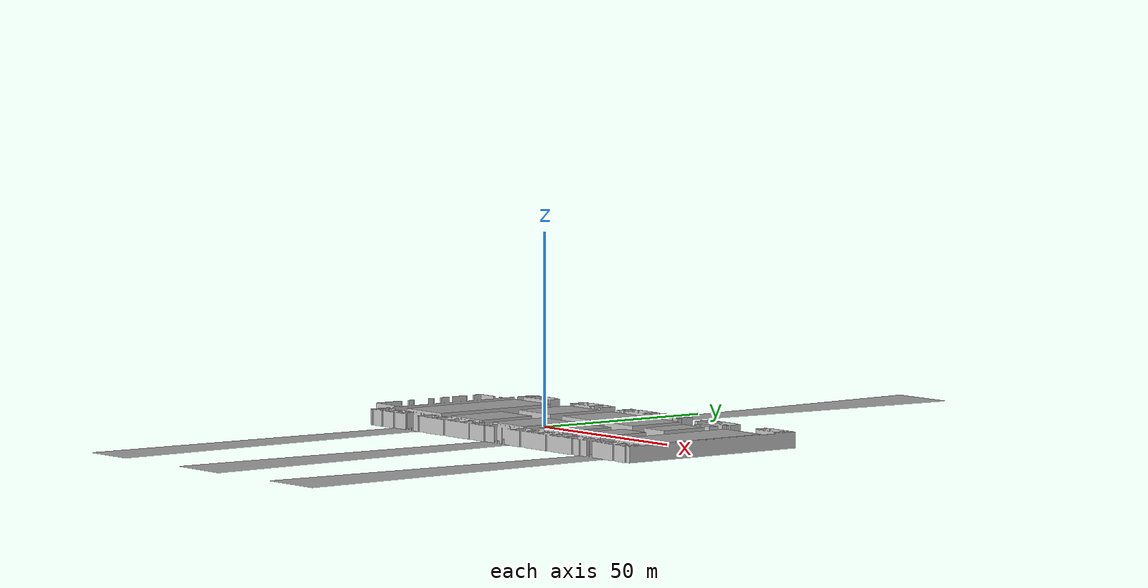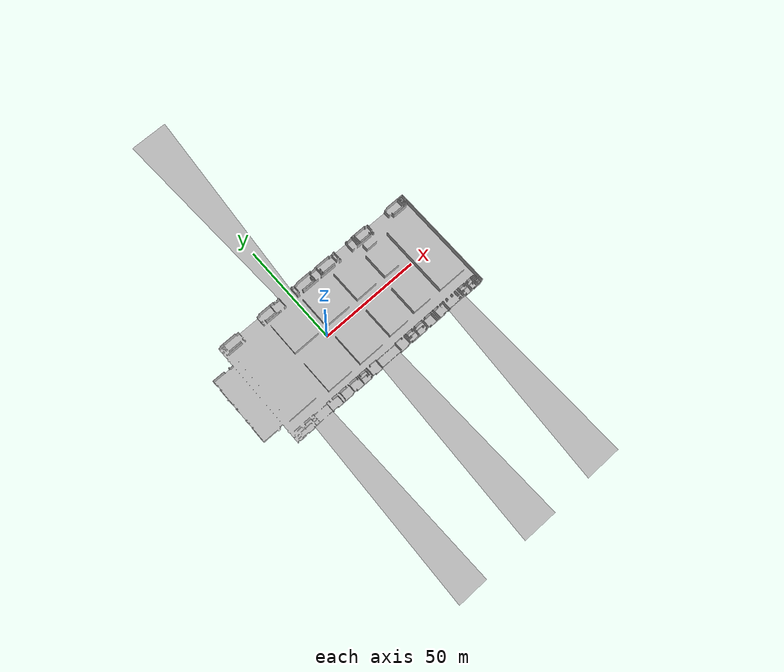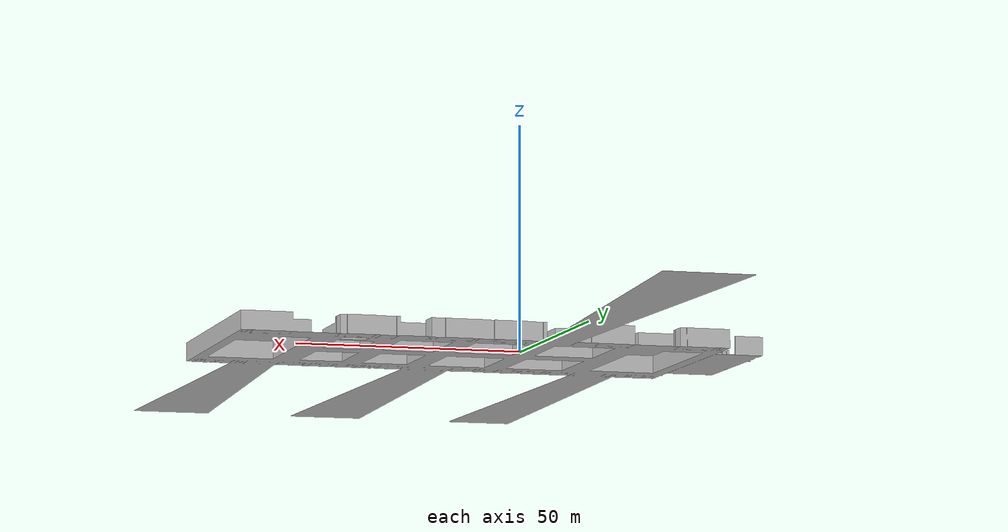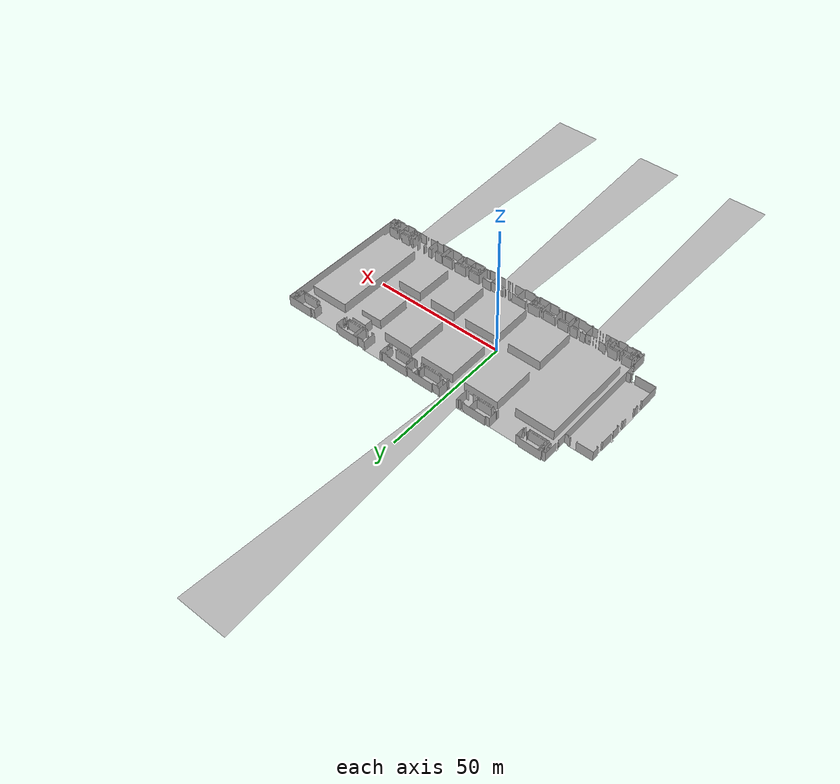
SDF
<?xml version="1.0" ?>
<sdf version="1.5">
  <model name="RC2016VRL_port3">
    <static>true</static>
    <pose>0 0 -1.1 0 0 1.57</pose>
    <link name="link">
      <collision name="collision">
        <geometry>
          <mesh>
            <uri>model://RC2016VRL_port3/port3.dae</uri>
            <scale>0.71 0.658 1.3</scale>
          </mesh>
        </geometry>
      </collision>
      <visual name="visual">
        <geometry>
          <mesh>
            <uri>model://RC2016VRL_port3/port3.dae</uri>
            <scale>0.71 0.658 1.3</scale>
          </mesh>
        </geometry>
        <cast_shadows>false</cast_shadows>
      </visual>
    </link>
  </model>
</sdf>
